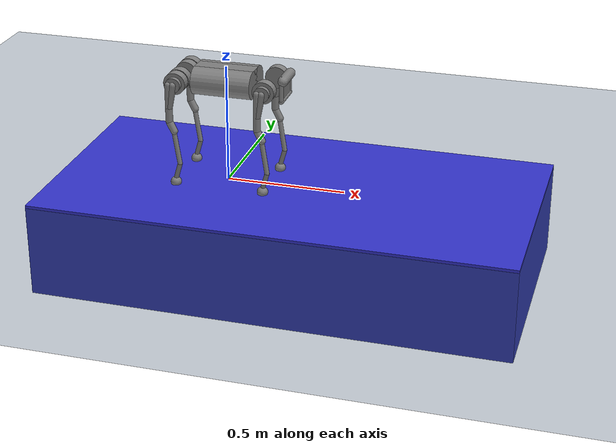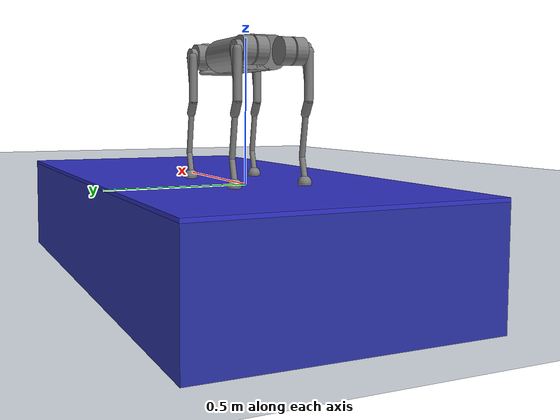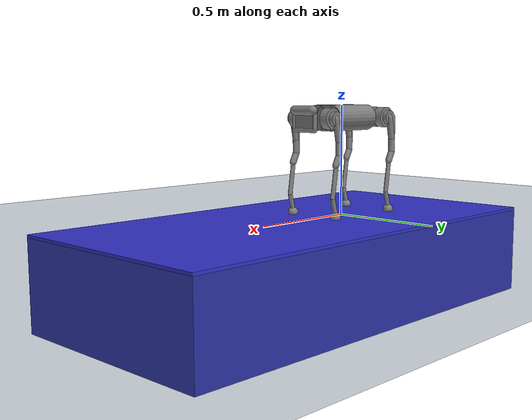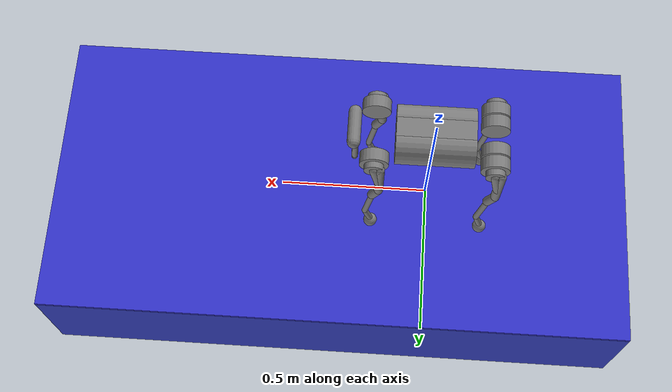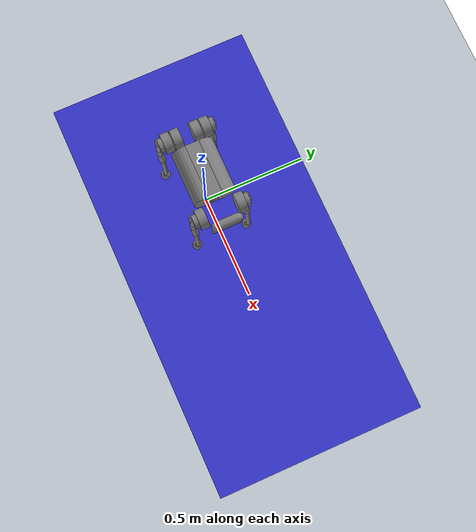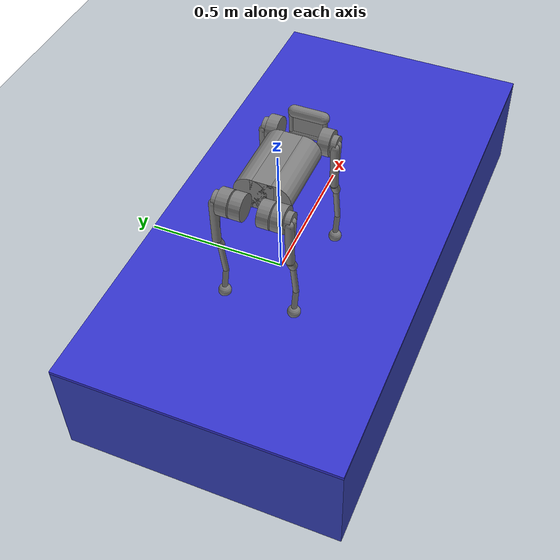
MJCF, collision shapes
<mujoco model="go1 scene">

  <include file="go1.xml"/>

  <statistic center="0 0 0.1" extent="0.8"/>
  <visual>
    <headlight diffuse="0.6 0.6 0.6" ambient="0.3 0.3 0.3" specular="0 0 0"/>
    <rgba haze="0.15 0.25 0.35 1"/>
    <global azimuth="120" elevation="-20"/>
  </visual>

  <asset>
    <texture type="skybox" builtin="gradient" rgb1="0.3 0.5 0.7" rgb2="0 0 0" width="512" height="3072"/>
    <texture type="2d" name="groundplane" builtin="checker" mark="edge" rgb1="0.2 0.3 0.4" rgb2="0.1 0.2 0.3"
      markrgb="0.8 0.8 0.8" width="300" height="300"/>
    <material name="groundplane" texture="groundplane" texuniform="true" texrepeat="5 5" reflectance="0.2"/>
  </asset>

  <worldbody>
    <light pos="0 0 1.5" dir="0 0 -1" directional="true"/>
    <geom name="floor" size="0 0 0.05" type="plane" material="groundplane"/>

      <body name="corridor1" pos="0.3 0 -0.19">
            <geom name="slippery_surface" size="1.0 0.5 0.2" type="box" priority="2" friction="0.8 0.08 0.02" rgba="0.2 0.2 0.8 0.3"/>
      </body>

  </worldbody>

</mujoco>

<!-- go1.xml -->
<mujoco model="go1">
  <compiler angle="radian" meshdir="assets" autolimits="true"/>

  <option cone="elliptic" impratio="100"/>

  <default>
    <default class="go1">
      <geom friction="0.6" margin="0.001" condim="1"/>
      <joint axis="0 1 0" damping="2" armature="0.01" frictionloss="0.2"/> <!-- damping 2 -->
      <position kp="100" forcerange="-23.7 23.7"/>
      <default class="abduction">
        <joint axis="1 0 0" damping="1" range="-0.863 0.863"/> <!-- damping 1 -->
        <position ctrlrange="-0.863 0.863"/>
      </default>
      <default class="hip">
        <joint range="-0.686 4.501"/>
        <position ctrlrange="-0.686 4.501"/>
      </default>
      <default class="knee">
        <joint range="-2.818 -0.888"/>
        <position forcerange="-35.55 35.55" ctrlrange="-2.818 -0.888"/>
      </default>
      <default class="visual">
        <geom type="mesh" contype="0" conaffinity="0" group="2" material="dark"/>
      </default>
      <default class="collision">
        <geom group="3" type="capsule"/>
        <default class="hip_left1">
          <geom size="0.046 0.02" pos="0 0.045 0" quat="1 1 0 0" type="cylinder"/>
        </default>
        <default class="hip_left2">
          <geom size="0.031 0.02" pos="0 0.065 0" quat="1 1 0 0" type="cylinder"/>
        </default>
        <default class="hip_left3">
          <geom size="0.046 0.02" quat="1 1 0 0" type="cylinder"/>
        </default>
        <default class="hip_right1">
          <geom size="0.046 0.02" pos="0 -0.045 0" quat="1 1 0 0" type="cylinder"/>
        </default>
        <default class="hip_right2">
          <geom size="0.031 0.02" pos="0 -0.065 0" quat="1 1 0 0" type="cylinder"/>
        </default>
        <default class="hip_right3">
          <geom size="0.046 0.02" quat="1 1 0 0" type="cylinder"/>
        </default>
        <default class="thigh1">
          <geom size="0.015" fromto="-0.02 0 0 -0.02 0 -0.16"/>
        </default>
        <default class="thigh2">
          <geom size="0.015" fromto="0 0 0 -0.02 0 -0.1"/>
        </default>
        <default class="thigh3">
          <geom size="0.015" fromto="-0.02 0 -0.16 0 0 -0.2"/>
        </default>
        <default class="calf1">
          <geom size="0.01" fromto="0 0 0 0.02 0 -0.13"/>
        </default>
        <default class="calf2">
          <geom size="0.01" fromto="0.02 0 -0.13 0 0 -0.2"/>
        </default>
        <default class="foot">
          <geom type="sphere" size="0.023" pos="0 0 -0.213" priority="1" solimp="0.915 1 0.031" condim="6"
            friction="0.8 0.02 0.01"/>
        </default>
      </default>
    </default>
  </default>

  <asset>
    <material name="dark" rgba="0.1 0.1 0.1 1"/>
    <mesh class="go1" file="trunk.stl"/>
    <mesh class="go1" file="hip.stl"/>
    <mesh class="go1" file="thigh_mirror.stl"/>
    <mesh class="go1" file="calf.stl"/>
    <mesh class="go1" file="thigh.stl"/>
  </asset>

  <worldbody>
    <light name="spotlight" mode="targetbodycom" target="trunk" pos="0 -1 2"/>
    <body name="trunk" pos="0 0 0.445" childclass="go1">
      <camera name="tracking" mode="trackcom" pos="0 -1 0.8" xyaxes="1 0 0 0 1 1"/>
      <inertial pos="0.0223 0.002 -0.0005" quat="-0.00342088 0.705204 0.000106698 0.708996" mass="5.204"
        diaginertia="0.0716565 0.0630105 0.0168101"/>
      <freejoint/>
      <geom class="visual" mesh="trunk"/>
      <geom class="collision" size="0.125 0.04 0.057" type="box"/>
      <geom class="collision" quat="1 0 1 0" pos="0 -0.04 0" size="0.058 0.125" type="cylinder"/>
      <geom class="collision" quat="1 0 1 0" pos="0 +0.04 0" size="0.058 0.125" type="cylinder"/>
      <geom class="collision" pos="0.25 0 0" size="0.005 0.06 0.05" type="box"/>
      <geom class="collision" pos="0.25 0.06 -0.01" size="0.009 0.035"/>
      <geom class="collision" pos="0.25 -0.06 -0.01" size="0.009 0.035"/>
      <geom class="collision" pos="0.25 0 -0.05" size="0.01 0.06" quat="1 1 0 0"/>
      <geom class="collision" pos="0.255 0 0.0355" size="0.021 0.052" quat="1 1 0 0"/>
      <site name="imu" pos="0 0 0"/>
      <body name="FR_hip" pos="0.1881 -0.04675 0">
        <inertial pos="-0.0049166 0.00762615 -8.865e-05" quat="0.507341 0.514169 0.495027 0.482891" mass="0.68"
          diaginertia="0.000734064 0.000468438 0.000398719"/>
        <joint class="abduction" name="FR_hip_joint"/>
        <geom class="visual" mesh="hip" quat="1 0 0 0"/>
        <geom class="hip_right1"/>
        <geom class="hip_right2"/>
        <body name="FR_thigh" pos="0 -0.08 0">
          <inertial pos="-0.00304722 0.019315 -0.0305004" quat="0.65243 -0.0272313 0.0775126 0.753383" mass="1.009"
            diaginertia="0.00478717 0.00460903 0.000709268"/>
          <joint class="hip" name="FR_thigh_joint"/>
          <geom class="visual" mesh="thigh_mirror"/>
          <geom class="thigh1"/>
          <geom class="thigh2"/>
          <geom class="thigh3"/>
          <body name="FR_calf" pos="0 0 -0.213">
            <inertial pos="0.00429862 0.000976676 -0.146197" quat="0.691246 0.00357467 0.00511118 0.722592"
              mass="0.195862" diaginertia="0.00149767 0.00148468 3.58427e-05"/>
            <joint class="knee" name="FR_calf_joint"/>
            <geom class="visual" mesh="calf"/>
            <geom class="calf1"/>
            <geom class="calf2"/>
            <geom name="FR" class="foot"/>
            <site name="FR" pos="0 0 -0.213" type="sphere" size="0.023" group="5"/>

          </body>
        </body>
      </body>
      <body name="FL_hip" pos="0.1881 0.04675 0">
        <inertial pos="-0.0049166 -0.00762615 -8.865e-05" quat="0.482891 0.495027 0.514169 0.507341" mass="0.68"
          diaginertia="0.000734064 0.000468438 0.000398719"/>
        <joint class="abduction" name="FL_hip_joint"/>
        <geom class="visual" mesh="hip"/>
        <geom class="hip_left1"/>
        <geom class="hip_left2"/>
        <body name="FL_thigh" pos="0 0.08 0">
          <inertial pos="-0.00304722 -0.019315 -0.0305004" quat="0.753383 0.0775126 -0.0272313 0.65243" mass="1.009"
            diaginertia="0.00478717 0.00460903 0.000709268"/>
          <joint class="hip" name="FL_thigh_joint"/>
          <geom class="visual" mesh="thigh"/>
          <geom class="thigh1"/>
          <geom class="thigh2"/>
          <geom class="thigh3"/>
          <body name="FL_calf" pos="0 0 -0.213">
            <inertial pos="0.00429862 0.000976676 -0.146197" quat="0.691246 0.00357467 0.00511118 0.722592"
              mass="0.195862" diaginertia="0.00149767 0.00148468 3.58427e-05"/>
            <joint class="knee" name="FL_calf_joint"/>
            <geom class="visual" mesh="calf"/>
            <geom class="calf1"/>
            <geom class="calf2"/>
            <geom name="FL" class="foot"/>
            <site name="FL" pos="0 0 -0.213" type="sphere" size="0.023" group="5"/>

          </body>
        </body>
      </body>
      <body name="RR_hip" pos="-0.1881 -0.04675 0">
        <inertial pos="0.0049166 0.00762615 -8.865e-05" quat="0.495027 0.482891 0.507341 0.514169" mass="0.68"
          diaginertia="0.000734064 0.000468438 0.000398719"/>
        <joint class="abduction" name="RR_hip_joint"/>
        <geom class="visual" quat="0 0 0 -1" mesh="hip"/>
        <geom class="hip_right1"/>
        <geom class="hip_right2"/>
        <geom class="hip_right3"/>
        <body name="RR_thigh" pos="0 -0.08 0">
          <inertial pos="-0.00304722 0.019315 -0.0305004" quat="0.65243 -0.0272313 0.0775126 0.753383" mass="1.009"
            diaginertia="0.00478717 0.00460903 0.000709268"/>
          <joint class="hip" name="RR_thigh_joint"/>
          <geom class="visual" mesh="thigh_mirror"/>
          <geom class="thigh1"/>
          <geom class="thigh2"/>
          <geom class="thigh3"/>
          <body name="RR_calf" pos="0 0 -0.213">
            <inertial pos="0.00429862 0.000976676 -0.146197" quat="0.691246 0.00357467 0.00511118 0.722592"
              mass="0.195862" diaginertia="0.00149767 0.00148468 3.58427e-05"/>
            <joint class="knee" name="RR_calf_joint"/>
            <geom class="visual" mesh="calf"/>
            <geom class="calf1"/>
            <geom class="calf2"/>
            <geom name="RR" class="foot"/>
            <site name="RR" pos="0 0 -0.213" type="sphere" size="0.023" group="5"/>

          </body>
        </body>
      </body>
      <body name="RL_hip" pos="-0.1881 0.04675 0">
        <inertial pos="0.0049166 -0.00762615 -8.865e-05" quat="0.514169 0.507341 0.482891 0.495027" mass="0.68"
          diaginertia="0.000734064 0.000468438 0.000398719"/>
        <joint class="abduction" name="RL_hip_joint"/>
        <geom class="visual" quat="0 0 1 0" mesh="hip"/>
        <geom class="hip_left1"/>
        <geom class="hip_left2"/>
        <geom class="hip_left3"/>
        <body name="RL_thigh" pos="0 0.08 0">
          <inertial pos="-0.00304722 -0.019315 -0.0305004" quat="0.753383 0.0775126 -0.0272313 0.65243" mass="1.009"
            diaginertia="0.00478717 0.00460903 0.000709268"/>
          <joint class="hip" name="RL_thigh_joint"/>
          <geom class="visual" mesh="thigh"/>
          <geom class="thigh1"/>
          <geom class="thigh2"/>
          <geom class="thigh3"/>
          <body name="RL_calf" pos="0 0 -0.213">
            <inertial pos="0.00429862 0.000976676 -0.146197" quat="0.691246 0.00357467 0.00511118 0.722592"
              mass="0.195862" diaginertia="0.00149767 0.00148468 3.58427e-05"/>
            <joint class="knee" name="RL_calf_joint"/>
            <geom class="visual" mesh="calf"/>
            <geom class="calf1"/>
            <geom class="calf2"/>
            <geom name="RL" class="foot"/>
            <site name="RL" pos="0 0 -0.213" type="sphere" size="0.023" group="5"/>

          </body>
        </body>
      </body>
    </body>
  </worldbody>

  <actuator>

    <motor name="FR_hip"       gear="1" joint="FR_hip_joint"/>
    <motor name="FR_thigh"     gear="1" joint="FR_thigh_joint"/>
    <motor name="FR_calf"      gear="1" joint="FR_calf_joint"/>
    <motor name="FL_hip"       gear="1" joint="FL_hip_joint"/>
    <motor name="FL_thigh"     gear="1" joint="FL_thigh_joint"/>
    <motor name="FL_calf"      gear="1" joint="FL_calf_joint"/>
    <motor name="RR_hip"       gear="1" joint="RR_hip_joint"/>
    <motor name="RR_thigh"     gear="1" joint="RR_thigh_joint"/>
    <motor name="RR_calf"      gear="1" joint="RR_calf_joint" />
    <motor name="RL_hip"       gear="1" joint="RL_hip_joint"/>
    <motor name="RL_thigh"     gear="1" joint="RL_thigh_joint"/>
    <motor name="RL_calf"      gear="1" joint="RL_calf_joint"/>

    <position class="abduction" name="pservo_FR_hip" joint="FR_hip_joint" kp="0.0"    />
    <velocity class="abduction" name="vservo_FR_hip" joint="FR_hip_joint" kv="5.5"  />
    <position class="hip" name="pservo_FR_thigh" joint="FR_thigh_joint"   kp="0.0"    />
    <velocity class="hip" name="vservo_FR_thigh" joint="FR_thigh_joint"   kv="3.0"  />
    <position class="knee" name="pservo_FR_calf" joint="FR_calf_joint"    kp="0.0"    />
    <velocity class="knee" name="vservo_FR_calf" joint="FR_calf_joint"    kv="2.0"  />

    <position class="abduction" name="pservo_FL_hip" joint="FL_hip_joint" kp="0.0"    />
    <velocity class="abduction" name="vservo_FL_hip" joint="FL_hip_joint" kv="5.5"  />
    <position class="hip" name="pservo_FL_thigh" joint="FL_thigh_joint"   kp="0.0"    />
    <velocity class="hip" name="vservo_FL_thigh" joint="FL_thigh_joint"   kv="3.0"  />
    <position class="knee" name="pservo_FL_calf" joint="FL_calf_joint"    kp="0.0"    />
    <velocity class="knee" name="vservo_FL_calf" joint="FL_calf_joint"    kv="2.0"  />

    <position class="abduction" name="pservo_RR_hip" joint="RR_hip_joint" kp="0.0"    />
    <velocity class="abduction" name="vservo_RR_hip" joint="RR_hip_joint" kv="5.5"  />
    <position class="hip" name="pservo_RR_thigh" joint="RR_thigh_joint"   kp="0.0"    />
    <velocity class="hip" name="vservo_RR_thigh" joint="RR_thigh_joint"   kv="3.0"  />
    <position class="knee" name="pservo_RR_calf" joint="RR_calf_joint"    kp="0.0"    />
    <velocity class="knee" name="vservo_RR_calf" joint="RR_calf_joint"    kv="2.0"  />

    <position class="abduction" name="pservo_RL_hip" joint="RL_hip_joint" kp="0.0"    />
    <velocity class="abduction" name="vservo_RL_hip" joint="RL_hip_joint" kv="5.5"  />
    <position class="hip" name="pservo_RL_thigh" joint="RL_thigh_joint"   kp="0.0"    />
    <velocity class="hip" name="vservo_RL_thigh" joint="RL_thigh_joint"   kv="3.0"  />
    <position class="knee" name="pservo_RL_calf" joint="RL_calf_joint"    kp="0.0"    />
    <velocity class="knee" name="vservo_RL_calf" joint="RL_calf_joint"    kv="2.0"  />

  </actuator>

    <sensor>

        <jointpos name="FR_hip_pos"     joint="FR_hip_joint"/>
        <jointpos name="FR_thigh_pos"   joint="FR_thigh_joint"/>
        <jointpos name="FR_calf_pos"    joint="FR_calf_joint"/>
        <jointpos name="FL_hip_pos"     joint="FL_hip_joint"/>
        <jointpos name="FL_thigh_pos"   joint="FL_thigh_joint"/>
        <jointpos name="FL_calf_pos"    joint="FL_calf_joint"/>
        <jointpos name="RR_hip_pos"     joint="RR_hip_joint"/>
        <jointpos name="RR_thigh_pos"   joint="RR_thigh_joint"/>
        <jointpos name="RR_calf_pos"    joint="RR_calf_joint" />
        <jointpos name="RL_hip_pos"     joint="RL_hip_joint"/>
        <jointpos name="RL_thigh_pos"   joint="RL_thigh_joint"/>
        <jointpos name="RL_calf_pos"    joint="RL_calf_joint"/>

        <jointvel name="FR_hip_vel"     joint="FR_hip_joint"/>
        <jointvel name="FR_thigh_vel"   joint="FR_thigh_joint"/>
        <jointvel name="FR_calf_vel"    joint="FR_calf_joint"/>
        <jointvel name="FL_hip_vel"     joint="FL_hip_joint"/>
        <jointvel name="FL_thigh_vel"   joint="FL_thigh_joint"/>
        <jointvel name="FL_calf_vel"    joint="FL_calf_joint"/>
        <jointvel name="RR_hip_vel"     joint="RR_hip_joint"/>
        <jointvel name="RR_thigh_vel"   joint="RR_thigh_joint"/>
        <jointvel name="RR_calf_vel"    joint="RR_calf_joint" />
        <jointvel name="RL_hip_vel"     joint="RL_hip_joint"/>
        <jointvel name="RL_thigh_vel"   joint="RL_thigh_joint"/>
        <jointvel name="RL_calf_vel"    joint="RL_calf_joint"/>

        <!-- Body IMU/PosQuat  -->
        <accelerometer name="Body_Acc" site="imu"/>
        <gyro name="Body_Gyro" site="imu"/>

        <framepos name="Body_Pos" objtype="site" objname="imu"/>
        <framequat name="Body_Quat" objtype="site" objname="imu"/>

        <!-- Extra sensors for tips Pos/Quat -->
        <framepos name="FR_Pos" objtype="site" objname="FR" reftype="site" refname="imu"/>
        <framequat name="FR_Quat" objtype="site" objname="FR"  reftype="site" refname="imu"/>

        <framepos name="FL_Pos" objtype="site" objname="FL"  reftype="site" refname="imu"/>
        <framequat name="FL_Quat" objtype="site" objname="FL"  reftype="site" refname="imu"/>

        <framepos name="RR_Pos" objtype="site" objname="RR"  reftype="site" refname="imu"/>
        <framequat name="RR_Quat" objtype="site" objname="RR"  reftype="site" refname="imu"/>

        <framepos name="RL_Pos" objtype="site" objname="RL"  reftype="site" refname="imu"/>
        <framequat name="RL_Quat" objtype="site" objname="RL"  reftype="site" refname="imu"/>

        <!-- Extra IMU sensor on foot tips -->
        <accelerometer name="FR_Acc" site="FR"/>
        <gyro name="FR_Gyro" site="FR"/>

        <accelerometer name="FL_Acc" site="FL"/>
        <gyro name="FL_Gyro" site="FL"/>

        <accelerometer name="RR_Acc" site="RR"/>
        <gyro name="RR_Gyro" site="RR"/>

        <accelerometer name="RL_Acc" site="RL"/>
        <gyro name="RL_Gyro" site="RL"/>

        <!-- Force sensors -->
        <force name="FR_foot_force" site="FR"/>
        <force name="FL_foot_force" site="FL"/>
        <force name="RR_foot_force" site="RR"/>
        <force name="RL_foot_force" site="RL"/>

        <!-- Velocity of the CoM -->
        <velocimeter name="Body_Vel" site="imu"/>

    </sensor>

    <contact>
        <pair  geom1="FR_tip" geom2="slippery_surface" condim="3" friction="0.8 0.02 0.01" />
        <pair  geom1="FL_tip" geom2="slippery_surface" condim="3" friction="0.8 0.02 0.01" />
        <pair  geom1="RR_tip" geom2="slippery_surface" condim="3" friction="0.8 0.02 0.01" />
        <pair  geom1="RL_tip" geom2="slippery_surface" condim="3" friction="0.8 0.02 0.01" />
    </contact>

</mujoco>
